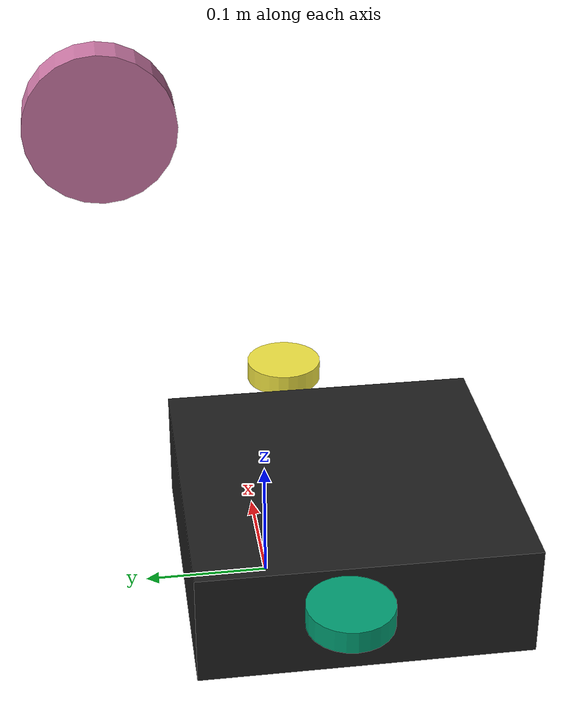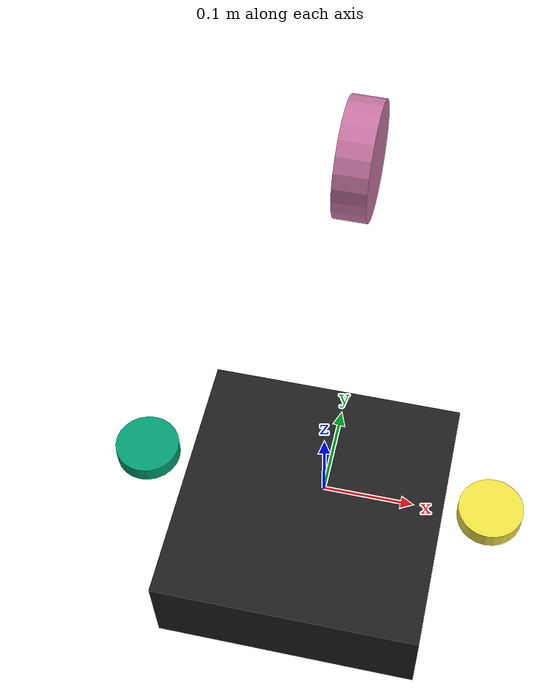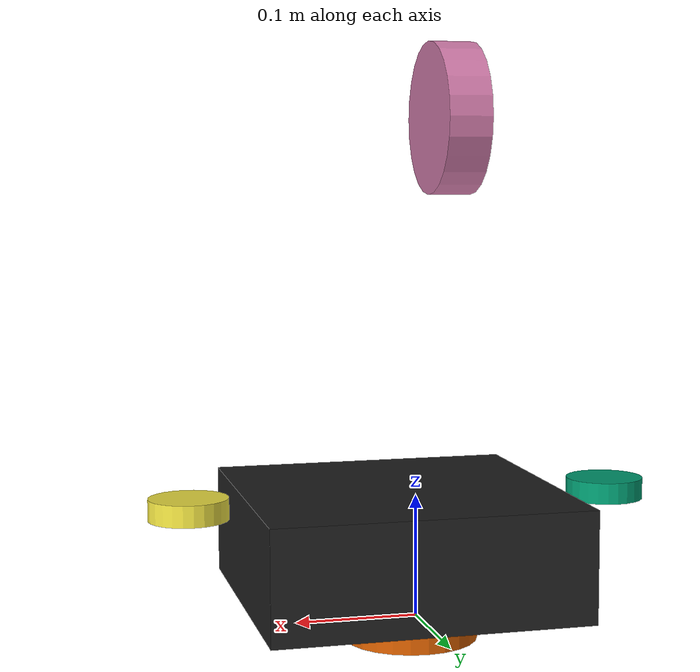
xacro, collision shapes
<?xml version="1.0" ?>
<robot name="dshape"
  xmlns:xacro="http://ros.org/wiki/xacro">
  <xacro:include filename="$(find rr_rover_zero_v2_description)/urdf/common_properties.xacro"/>

  <link name="base_footprint"/>

  <joint name="base_joint" type="fixed">
    <parent link="base_footprint"/>
    <child link="base_link" />
    <origin xyz="0 0 0.0" rpy="0 0 1.57"/>
  </joint>

  <link name="base_link">
    <visual>
      <origin xyz="0 -0.08 0.0" rpy="0 0 1.57"/>
      <geometry>
        <mesh filename="package://rr_rover_zero_v2_description/meshes/bases/dshape_base_2.stl" scale="0.001 0.001 0.001"/>
      </geometry>
      <material name="light_black"/>
    </visual>

    <collision>
      <origin xyz="-0.064 0 0.047" rpy="0 0 0"/>
      <geometry>
        <box size="0.266 0.266 0.094"/>
      </geometry>
    </collision>

    <inertial>
      <origin xyz="0 0 0" rpy="0 0 0"/>
      <mass value="1.3729096e+00"/>
      <inertia ixx="8.7002718e-03" ixy="-4.7576583e-05" ixz="1.1160499e-04" iyy="8.6195418e-03" iyz="-3.5422299e-06" izz="1.4612727e-02" />
    </inertial>
  </link>

  <joint name="wheel_left_joint" type="fixed">
    <parent link="base_link"/>
    <child link="wheel_left_link"/>
    <origin xyz="-0.04 0.18 0.09" rpy="0 0 0"/>
    <axis xyz="0 0 1"/>
  </joint>

  <link name="wheel_left_link">
    <visual>
      <origin xyz="0.05 -0.25 -0.27" rpy="0 0 1.57"/>
      <geometry>
        <mesh filename="package://rr_rover_zero_v2_description/meshes/wheels/dshape_wheel.stl" scale="0.001 0.001 0.001"/>
      </geometry>
      <material name="dark"/>
    </visual>

    <collision>
      <origin xyz="0 0 0" rpy="0 0 0"/>
      <geometry>
        <cylinder length="0.018" radius="0.033"/>
      </geometry>
    </collision>

    <inertial>
      <origin xyz="0 0 0" />
      <mass value="2.8498940e-02" />
      <inertia ixx="1.1175580e-05" ixy="-4.2369783e-11" ixz="-5.9381719e-09" iyy="1.1192413e-05" iyz="-1.4400107e-11" izz="2.0712558e-05" />
    </inertial>
  </link>

  <joint name="wheel_right_joint" type="fixed">
    <parent link="base_link"/>
    <child link="wheel_right_link"/>
    <origin xyz="-0.04 -0.18 0.09" rpy="0 0 0"/>
    <axis xyz="0 0 0"/>
  </joint>

  <link name="wheel_right_link">
    <visual>
      <origin xyz="-0.05 0.25 -0.27" rpy="0 0 -1.57"/>
      <geometry>
        <mesh filename="package://rr_rover_zero_v2_description/meshes/wheels/dshape_wheel.stl" scale="0.001 0.001 0.001"/>
      </geometry>
      <material name="dark"/>
    </visual>

    <collision>
      <origin xyz="0 0 0" rpy="0 0 0"/>
      <geometry>
        <cylinder length="0.018" radius="0.033"/>
      </geometry>
    </collision>

    <inertial>
      <origin xyz="0 0 0" />
      <mass value="2.8498940e-02" />
      <inertia ixx="1.1175580e-05" ixy="-4.2369783e-11" ixz="-5.9381719e-09" iyy="1.1192413e-05" iyz="-1.4400107e-11" izz="2.0712558e-05" />
    </inertial>

  </link>

  <joint name="backcaster_joint" type="fixed">
    <parent link="base_link"/>
    <child link="backcaster_link"/>
    <origin xyz="-0.177 -0.064 -0.004" rpy="-1.57 0 0"/>
  </joint>

  <link name="backcaster_link">
    <collision>
      <origin xyz="0 0.001 0" rpy="0 0 0"/>
      <geometry>
        <box size="0.030 0.009 0.020"/>
      </geometry>
    </collision>

    <inertial>
      <origin xyz="0 0 0" />
      <mass value="0.005" />
      <inertia ixx="0.001" ixy="0.0" ixz="0.0" iyy="0.001" iyz="0.0" izz="0.001" />
    </inertial>
  </link>

  <joint name="scan_joint" type="fixed">
    <parent link="base_link"/>
    <child link="base_scan"/>
    <origin xyz="0 0 0" rpy="0 0 3.14159"/>
  </joint>

  <link name="base_scan">
    <visual>
      <origin xyz="0 0 0" rpy="0 0 0"/>
      <geometry>
        <mesh filename="package://rr_rover_zero_v2_description/meshes/sensors/lidar.stl" scale="0.001 0.001 0.001"/>
      </geometry>
      <material name="dark"/>
    </visual>

    <collision>
      <origin xyz="0.015 0 -0.0065" rpy="0 0 0"/>
      <geometry>
        <cylinder length="0.0315" radius="0.055"/>
      </geometry>
    </collision>

    <inertial>
      <mass value="0.114" />
      <origin xyz="0 0 0" />
      <inertia ixx="0.001" ixy="0.0" ixz="0.0" iyy="0.001" iyz="0.0" izz="0.001" />
    </inertial>
  </link>

  <joint name="camera_joint" type="fixed">
    <parent link="base_link"/>
    <child link="camera_link"/>
    <origin xyz="0.1 0 0.4" rpy="-1.57 0 0"/>
  </joint>

  <link name="camera_link">
    <visual>
      <origin xyz="0 0 0" rpy="0 0 0"/>
      <geometry>
        <cylinder length="0.0315" radius="0.055"/>
      </geometry>
      <material name="dark"/>
    </visual>

    <collision>
      <origin xyz="0.015 0 -0.0065" rpy="0 0 0"/>
      <geometry>
        <cylinder length="0.0315" radius="0.055"/>
      </geometry>
    </collision>

    <inertial>
      <mass value="0.114" />
      <origin xyz="0 0 0" />
      <inertia ixx="0.001" ixy="0.0" ixz="0.0" iyy="0.001" iyz="0.0" izz="0.001" />
    </inertial>
  </link>

</robot>
